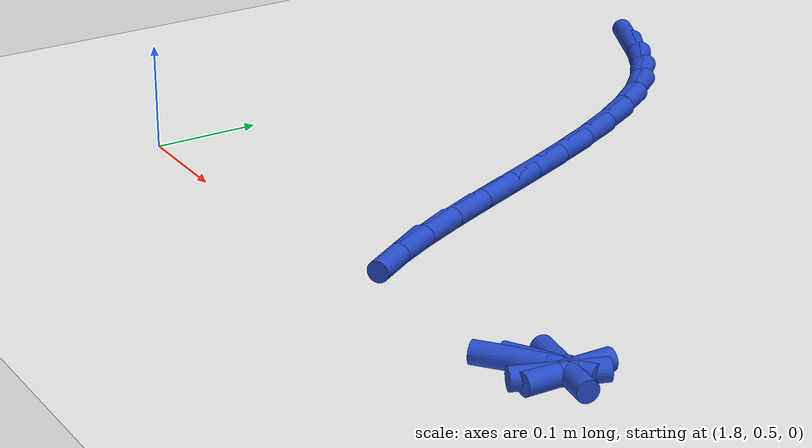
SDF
<sdf version="1.6">
 <world name="default">
  <model name="ground_plane">
   <static>1</static>
   <link name="link">
    <collision name="collision">
     <geometry><plane><normal>0 0 1</normal><size>100 100</size></plane></geometry>
     <surface><friction><ode><mu>100</mu><mu2>50</mu2></ode></friction></surface>
    </collision>
    <visual name="visual">
     <cast_shadows>0</cast_shadows>
     <geometry><plane><normal>0 0 1</normal><size>100 100</size></plane></geometry>
     <material>
      <script><uri>file://media/materials/scripts/gazebo.material</uri><name>Gazebo/WhiteGlow</name></script>
     </material>
    </visual>
   </link>
  </model>
  <model name="line">
   <link name="link_74">
    <pose>1.8206862290010413 1.0300462166254205 0.01 0 1.57 -0.41685902731152863</pose>
    <collision name="collision">
     <geometry><cylinder><radius>0.01</radius><length>0.08</length></cylinder></geometry>
    </collision>
    <visual name="visual">
     <material>
      <script><name>Gazebo/Blue</name><uri>file://media/materials/scripts/gazebo.material</uri></script>
     </material>
     <geometry><cylinder><radius>0.01</radius><length>0.08</length></cylinder></geometry>
    </visual>
   </link>
   <link name="link_75">
    <pose>1.8522942319061138 1.016049862845992 0.01 0 1.57 -0.5186022053603065</pose>
    <collision name="collision">
     <geometry><cylinder><radius>0.01</radius><length>0.08</length></cylinder></geometry>
    </collision>
    <visual name="visual">
     <material>
      <script><name>Gazebo/Blue</name><uri>file://media/materials/scripts/gazebo.material</uri></script>
     </material>
     <geometry><cylinder><radius>0.01</radius><length>0.08</length></cylinder></geometry>
    </visual>
   </link>
   <link name="link_76">
    <pose>1.8825777658295972 0.9987668294581855 0.01 0 1.57 -0.6422284154508868</pose>
    <collision name="collision">
     <geometry><cylinder><radius>0.01</radius><length>0.08</length></cylinder></geometry>
    </collision>
    <visual name="visual">
     <material>
      <script><name>Gazebo/Blue</name><uri>file://media/materials/scripts/gazebo.material</uri></script>
     </material>
     <geometry><cylinder><radius>0.01</radius><length>0.08</length></cylinder></geometry>
    </visual>
   </link>
   <link name="link_77">
    <pose>1.9112372878904909 0.9773291254435618 0.01 0 1.57 -0.7796934066819615</pose>
    <collision name="collision">
     <geometry><cylinder><radius>0.01</radius><length>0.08</length></cylinder></geometry>
    </collision>
    <visual name="visual">
     <material>
      <script><name>Gazebo/Blue</name><uri>file://media/materials/scripts/gazebo.material</uri></script>
     </material>
     <geometry><cylinder><radius>0.01</radius><length>0.08</length></cylinder></geometry>
    </visual>
   </link>
   <link name="link_78">
    <pose>1.9379797325084764 0.9508900716271254 0.01 0 1.57 -0.9047093194507138</pose>
    <collision name="collision">
     <geometry><cylinder><radius>0.01</radius><length>0.08</length></cylinder></geometry>
    </collision>
    <visual name="visual">
     <material>
      <script><name>Gazebo/Blue</name><uri>file://media/materials/scripts/gazebo.material</uri></script>
     </material>
     <geometry><cylinder><radius>0.01</radius><length>0.08</length></cylinder></geometry>
    </visual>
   </link>
   <link name="link_79">
    <pose>1.9627469240330444 0.9193758319755952 0.01 0 1.57 -0.9977627869747383</pose>
    <collision name="collision">
     <geometry><cylinder><radius>0.01</radius><length>0.08</length></cylinder></geometry>
    </collision>
    <visual name="visual">
     <material>
      <script><name>Gazebo/Blue</name><uri>file://media/materials/scripts/gazebo.material</uri></script>
     </material>
     <geometry><cylinder><radius>0.01</radius><length>0.08</length></cylinder></geometry>
    </visual>
   </link>
   <link name="link_80">
    <pose>1.98577637692691 0.8836854605079247 0.01 0 1.57 -1.0649965970787165</pose>
    <collision name="collision">
     <geometry><cylinder><radius>0.01</radius><length>0.08</length></cylinder></geometry>
    </collision>
    <visual name="visual">
     <material>
      <script><name>Gazebo/Blue</name><uri>file://media/materials/scripts/gazebo.material</uri></script>
     </material>
     <geometry><cylinder><radius>0.01</radius><length>0.08</length></cylinder></geometry>
    </visual>
   </link>
   <link name="link_81">
    <pose>2.0073244453384715 0.8447799982421857 0.01 0 1.57 -1.1121508738034331</pose>
    <collision name="collision">
     <geometry><cylinder><radius>0.01</radius><length>0.08</length></cylinder></geometry>
    </collision>
    <visual name="visual">
     <material>
      <script><name>Gazebo/Blue</name><uri>file://media/materials/scripts/gazebo.material</uri></script>
     </material>
     <geometry><cylinder><radius>0.01</radius><length>0.08</length></cylinder></geometry>
    </visual>
   </link>
   <link name="link_82">
    <pose>2.0276474834161275 0.8036204861964529 0.01 0 1.57 -1.1430417790752947</pose>
    <collision name="collision">
     <geometry><cylinder><radius>0.01</radius><length>0.08</length></cylinder></geometry>
    </collision>
    <visual name="visual">
     <material>
      <script><name>Gazebo/Blue</name><uri>file://media/materials/scripts/gazebo.material</uri></script>
     </material>
     <geometry><cylinder><radius>0.01</radius><length>0.08</length></cylinder></geometry>
    </visual>
   </link>
   <link name="link_83">
    <pose>2.0470018453082766 0.7611679653887987 0.01 0 1.57 -1.1598812377643082</pose>
    <collision name="collision">
     <geometry><cylinder><radius>0.01</radius><length>0.08</length></cylinder></geometry>
    </collision>
    <visual name="visual">
     <material>
      <script><name>Gazebo/Blue</name><uri>file://media/materials/scripts/gazebo.material</uri></script>
     </material>
     <geometry><cylinder><radius>0.01</radius><length>0.08</length></cylinder></geometry>
    </visual>
   </link>
   <link name="link_84">
    <pose>2.065643885163317 0.7183834768372979 0.01 0 1.57 -1.163512818470548</pose>
    <collision name="collision">
     <geometry><cylinder><radius>0.01</radius><length>0.08</length></cylinder></geometry>
    </collision>
    <visual name="visual">
     <material>
      <script><name>Gazebo/Blue</name><uri>file://media/materials/scripts/gazebo.material</uri></script>
     </material>
     <geometry><cylinder><radius>0.01</radius><length>0.08</length></cylinder></geometry>
    </visual>
   </link>
   <link name="link_85">
    <pose>2.083829957129649 0.6762280615600227 0.01 0 1.57 -1.1534485427687924</pose>
    <collision name="collision">
     <geometry><cylinder><radius>0.01</radius><length>0.08</length></cylinder></geometry>
    </collision>
    <visual name="visual">
     <material>
      <script><name>Gazebo/Blue</name><uri>file://media/materials/scripts/gazebo.material</uri></script>
     </material>
     <geometry><cylinder><radius>0.01</radius><length>0.08</length></cylinder></geometry>
    </visual>
   </link>
   <link name="link_86">
    <pose>2.1018164153556698 0.6356627605750473 0.01 0 1.57 -1.127638226678052</pose>
    <collision name="collision">
     <geometry><cylinder><radius>0.01</radius><length>0.08</length></cylinder></geometry>
    </collision>
    <visual name="visual">
     <material>
      <script><name>Gazebo/Blue</name><uri>file://media/materials/scripts/gazebo.material</uri></script>
     </material>
     <geometry><cylinder><radius>0.01</radius><length>0.08</length></cylinder></geometry>
    </visual>
   </link>
   <link name="link_87">
    <pose>2.1198596139897776 0.597648614900445 0.01 0 1.57 -1.081849261386643</pose>
    <collision name="collision">
     <geometry><cylinder><radius>0.01</radius><length>0.08</length></cylinder></geometry>
    </collision>
    <visual name="visual">
     <material>
      <script><name>Gazebo/Blue</name><uri>file://media/materials/scripts/gazebo.material</uri></script>
     </material>
     <geometry><cylinder><radius>0.01</radius><length>0.08</length></cylinder></geometry>
    </visual>
   </link>
   <link name="link_88">
    <pose>2.1382159071803724 0.5631466655542886 0.01 0 1.57 -1.008427151818762</pose>
    <collision name="collision">
     <geometry><cylinder><radius>0.01</radius><length>0.08</length></cylinder></geometry>
    </collision>
    <visual name="visual">
     <material>
      <script><name>Gazebo/Blue</name><uri>file://media/materials/scripts/gazebo.material</uri></script>
     </material>
     <geometry><cylinder><radius>0.01</radius><length>0.08</length></cylinder></geometry>
    </visual>
   </link>
   <link name="link_97">
    <pose>2.3489221351207057 0.5456968442401947 0.01 0 1.57 0.6812899354245167</pose>
    <collision name="collision">
     <geometry><cylinder><radius>0.01</radius><length>0.08</length></cylinder></geometry>
    </collision>
    <visual name="visual">
     <material>
      <script><name>Gazebo/Blue</name><uri>file://media/materials/scripts/gazebo.material</uri></script>
     </material>
     <geometry><cylinder><radius>0.01</radius><length>0.08</length></cylinder></geometry>
    </visual>
   </link>
   <link name="link_98">
    <pose>2.366515232718541 0.5599612762452607 0.01 0 1.57 0.5275569852346813</pose>
    <collision name="collision">
     <geometry><cylinder><radius>0.01</radius><length>0.08</length></cylinder></geometry>
    </collision>
    <visual name="visual">
     <material>
      <script><name>Gazebo/Blue</name><uri>file://media/materials/scripts/gazebo.material</uri></script>
     </material>
     <geometry><cylinder><radius>0.01</radius><length>0.08</length></cylinder></geometry>
    </visual>
   </link>
   <link name="link_99">
    <pose>2.3777092623313005 0.5664833656380236 0.01 0 1.57 -0.13574490421790883</pose>
    <collision name="collision">
     <geometry><cylinder><radius>0.01</radius><length>0.08</length></cylinder></geometry>
    </collision>
    <visual name="visual">
     <material>
      <script><name>Gazebo/Blue</name><uri>file://media/materials/scripts/gazebo.material</uri></script>
     </material>
     <geometry><cylinder><radius>0.01</radius><length>0.08</length></cylinder></geometry>
    </visual>
   </link>
   <link name="link_100">
    <pose>2.383008294966867 0.5657595979447609 0.01 0 1.57 1.5585004629659556</pose>
    <collision name="collision">
     <geometry><cylinder><radius>0.01</radius><length>0.08</length></cylinder></geometry>
    </collision>
    <visual name="visual">
     <material>
      <script><name>Gazebo/Blue</name><uri>file://media/materials/scripts/gazebo.material</uri></script>
     </material>
     <geometry><cylinder><radius>0.01</radius><length>0.08</length></cylinder></geometry>
    </visual>
   </link>
   <link name="link_101">
    <pose>2.382916401633126 0.5582864586917504 0.01 0 1.57 1.222832045525611</pose>
    <collision name="collision">
     <geometry><cylinder><radius>0.01</radius><length>0.08</length></cylinder></geometry>
    </collision>
    <visual name="visual">
     <material>
      <script><name>Gazebo/Blue</name><uri>file://media/materials/scripts/gazebo.material</uri></script>
     </material>
     <geometry><cylinder><radius>0.01</radius><length>0.08</length></cylinder></geometry>
    </visual>
   </link>
  </model>
 </world>
</sdf>
